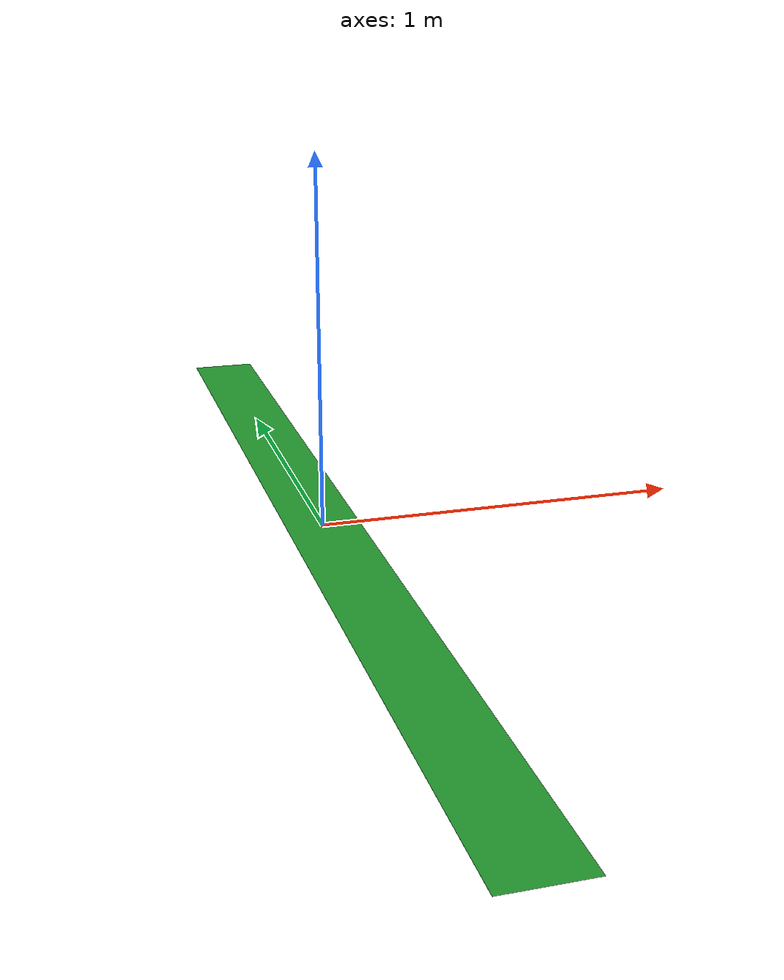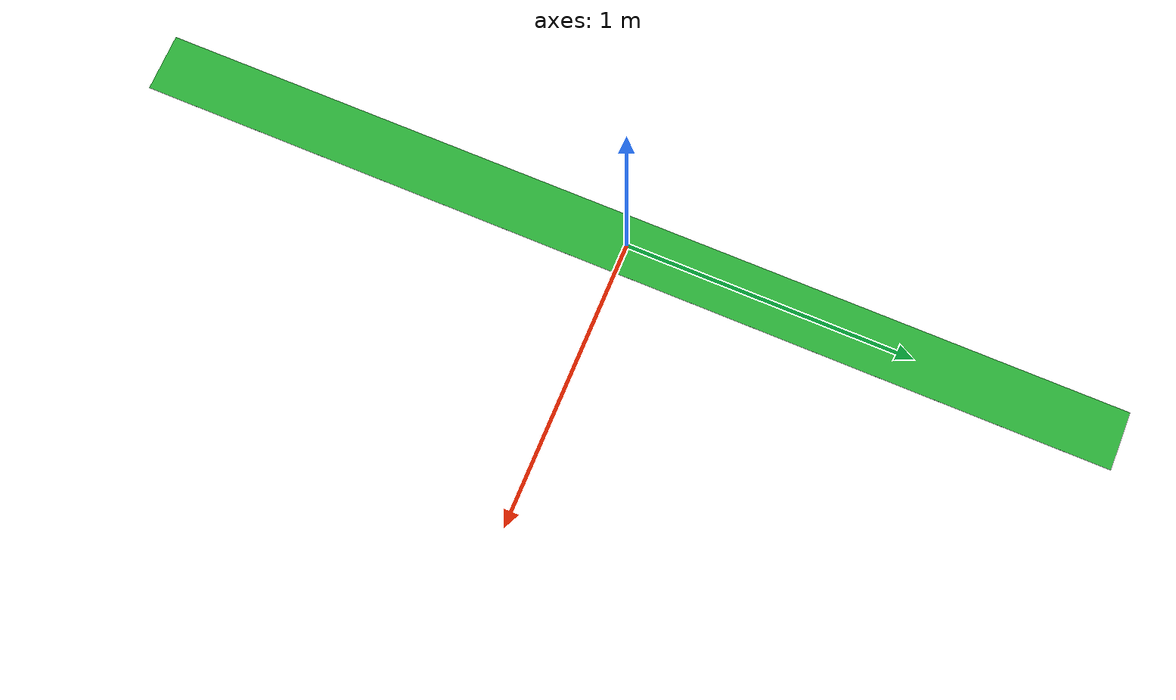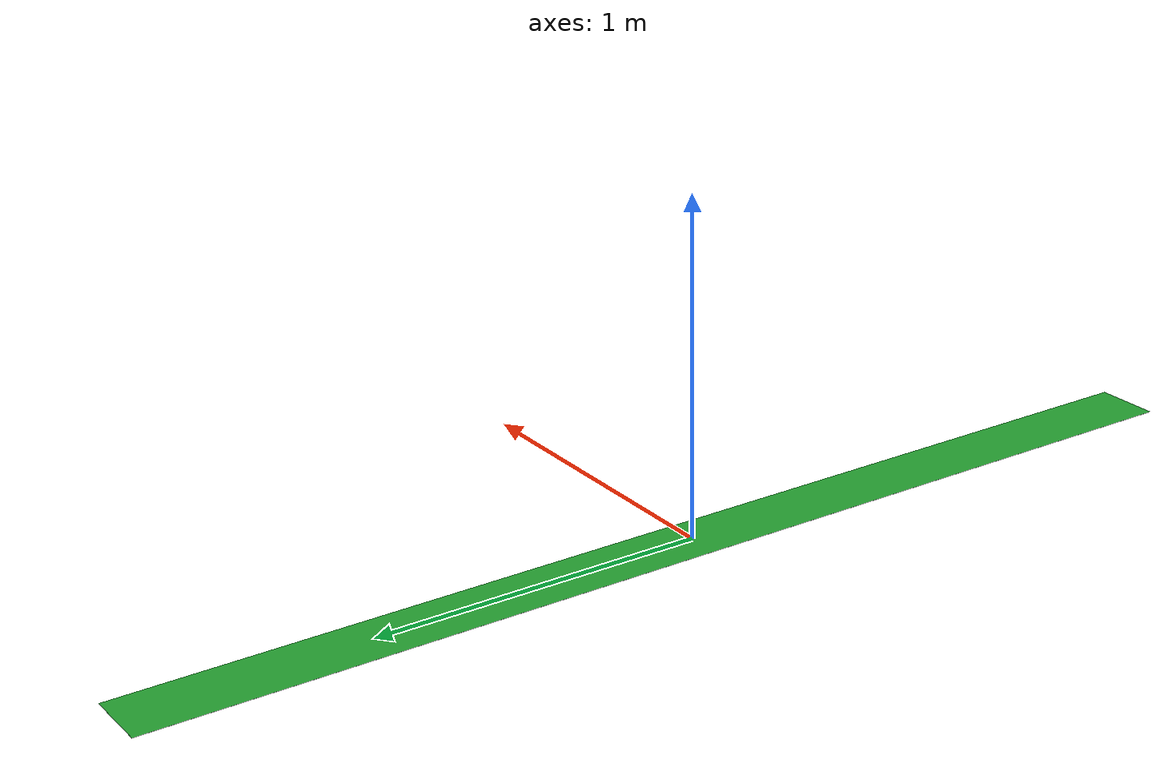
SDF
<?xml version="1.0"?>
<sdf version="1.6">
<model name="green line">
  <static>true</static>
    <link name="link_ground">
      <collision name="collision">
        <geometry>
          <plane>
            <normal>0 0 1</normal>
            <size>0.1 3.2</size>
          </plane>
        </geometry>

        <surface>
          <friction>
            <ode>
              <mu>100</mu>
              <mu2>500</mu2>
            </ode>
          </friction>
        </surface>
      </collision>
      <visual name="visual_ground">
        <cast_shadows>false</cast_shadows>
        <geometry>
          <plane>
            <normal>0 0 1</normal>
            <size>0.2 3.4</size>
          </plane>
        </geometry>
       <material>
          <script>
            <uri>file://media/materials/scripts/gazebo.material</uri>
            <name>Gazebo/Green</name>
          </script>
        </material>
      </visual>
    </link>
  </model>
</sdf>
